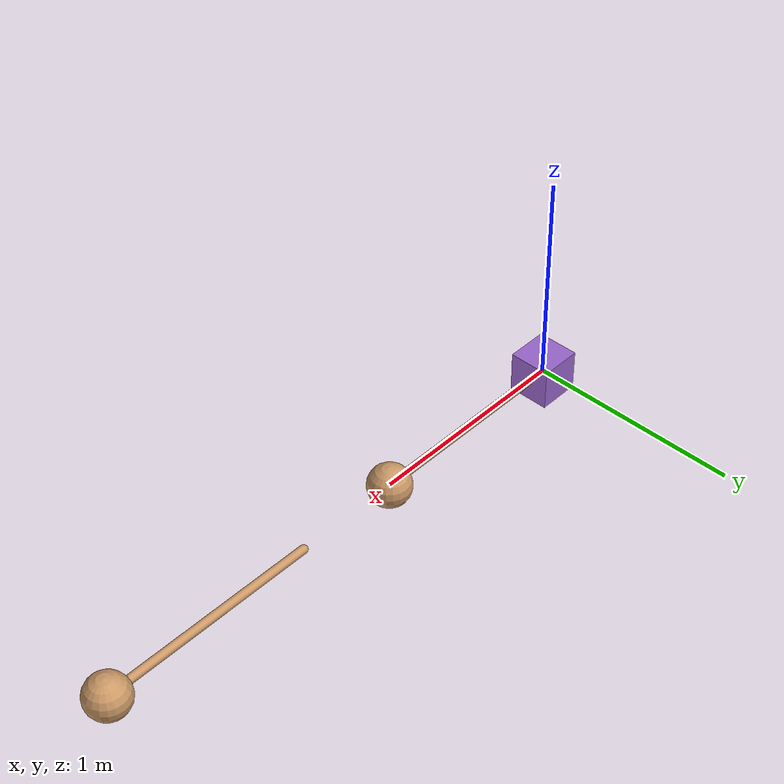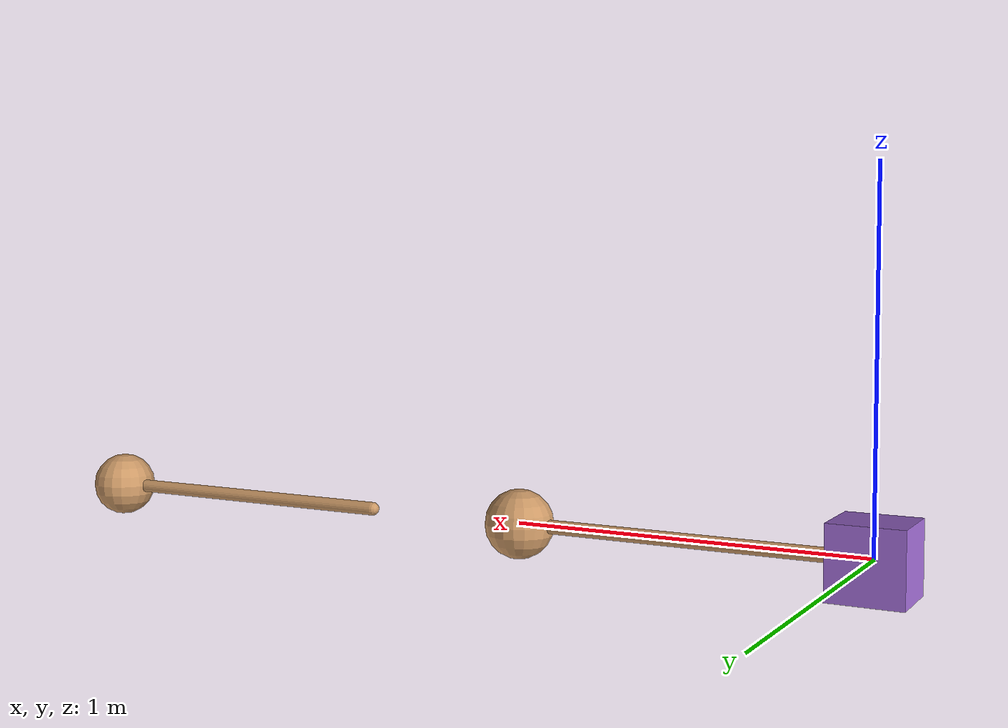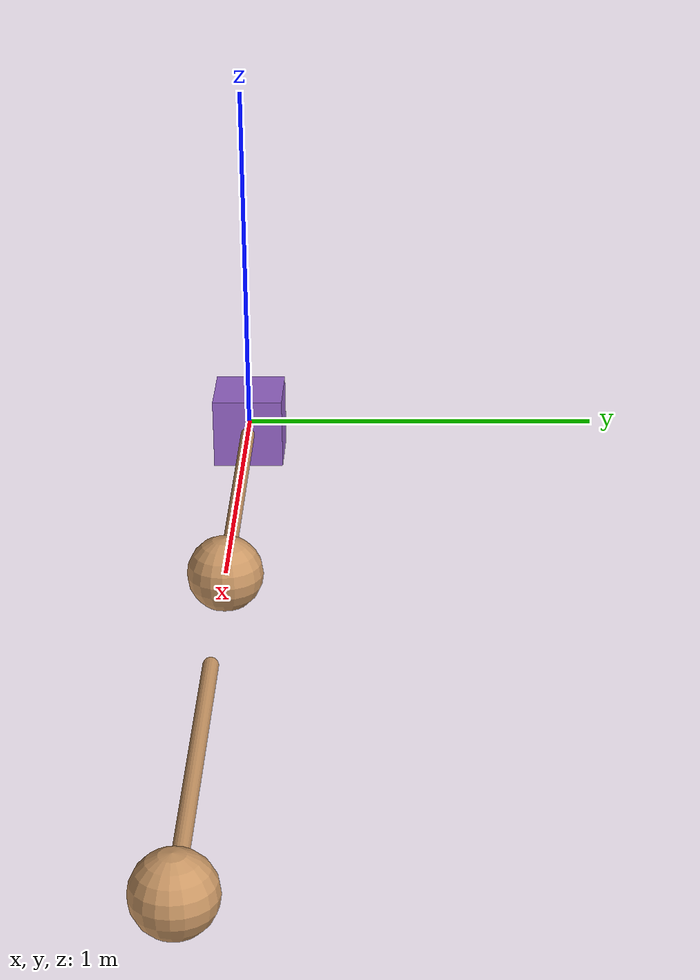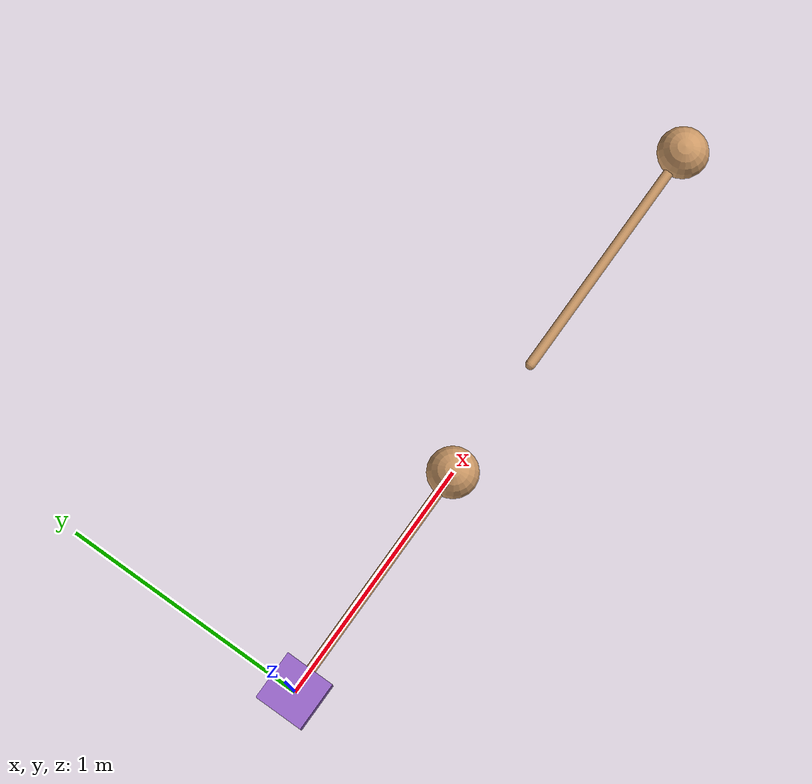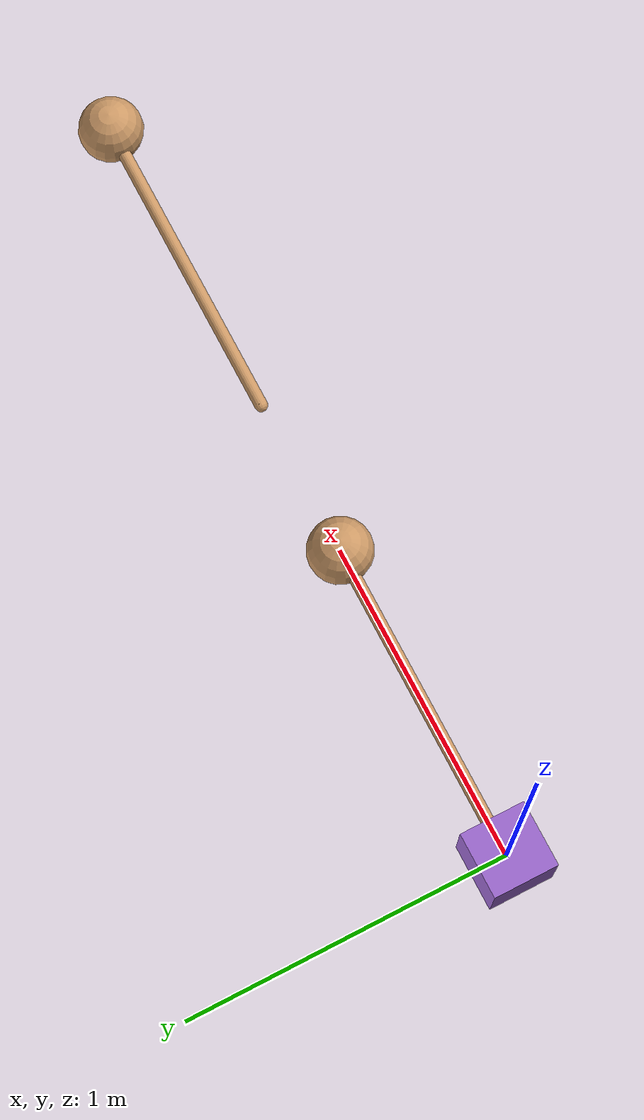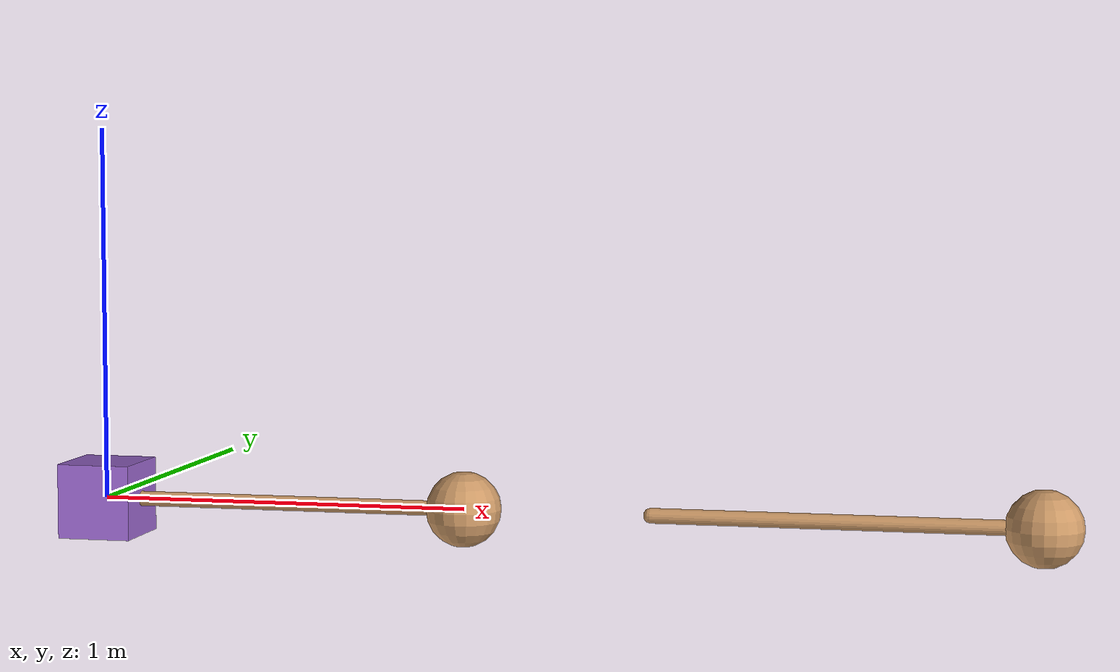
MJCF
<!-- free motion of pendulum 2 (on the right) with damping 0.2 -->
<mujoco>
  <visual>
    <global elevation="-20"/>
    <headlight ambient=".3 .3 .3" diffuse=".9 .9 .9"/>
  </visual>

  <default>
    <geom rgba="0.8 0.6 .4 1"/>
  </default>

  <worldbody>
    <!-- First pendulum -->
    <body name="link1">
      <!-- inertia of link1 is 1.0 -->
      <joint name="link1" axis="0 -1 0"/>
      <geom type="capsule" size=".02" fromto="0 0 0 1 0 0" mass="0"/>
      <geom type="sphere" size=".1" mass="1" pos="1 0 0"/>
    </body>

    <!-- Motor body -->
    <body name="motor1">
      <!-- inertia of motor1 is 1/12 * m * (0.2^2 + 0.2^2) = 0.2 -->
      <joint name="motor1" axis="0 -1 0"/>
      <geom type="box" size=".1 .1 .1" mass="30" contype="0" conaffinity="0" rgba=".6 .4 .8 1"/>
    </body>

    <!-- Second pendulum: now free motion -->
    <body name="link2" pos="1.5 0 0">
      <!-- armature from reflected inertia of motor1 is 0.2 * 3^2 = 1.8 -->
      <joint name="link2" armature="1.8" axis="0 -1 0" damping="0.2"/>
      <geom type="capsule" size=".02" fromto="0 0 0 1 0 0" mass="0"/>
      <geom type="sphere" size=".1" mass="1" pos="1 0 0"/>
    </body>
  </worldbody>

  <equality>
    <!-- gear ratio between motor1 and link1 is 3:1 -->
    <joint joint1="motor1" joint2="link1" polycoef="0 3"/>
  </equality>

  <actuator>
    <!-- keep actuator for the first pendulum only -->
    <position name="link1" joint="motor1" kp=".3" ctrlrange="-5 5"/>
    <!-- removed actuator for link2 -->
  </actuator>

  <keyframe>
    <!-- give link2 a small initial tilt to start free motion -->
    <key name="initial_pose" qpos="0 0 0.5"/>
  </keyframe>
</mujoco>
